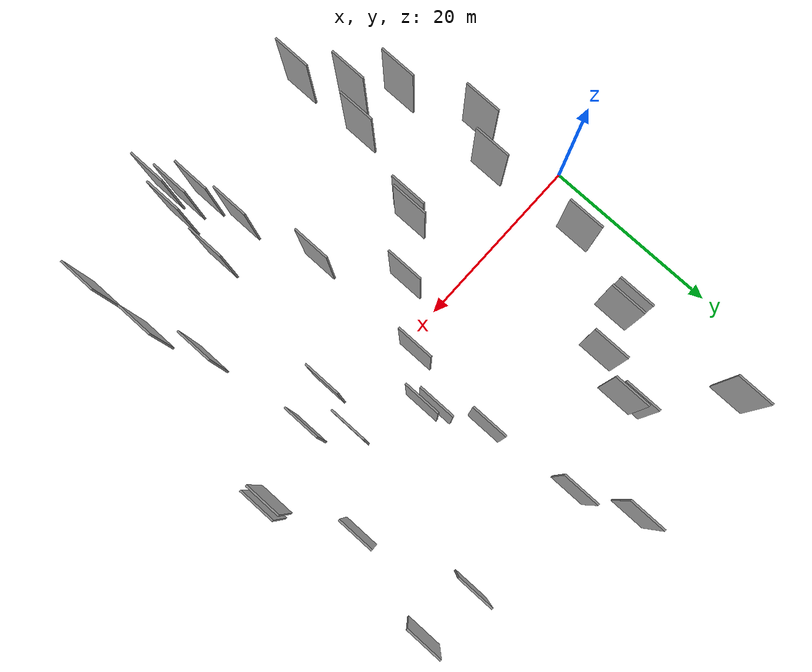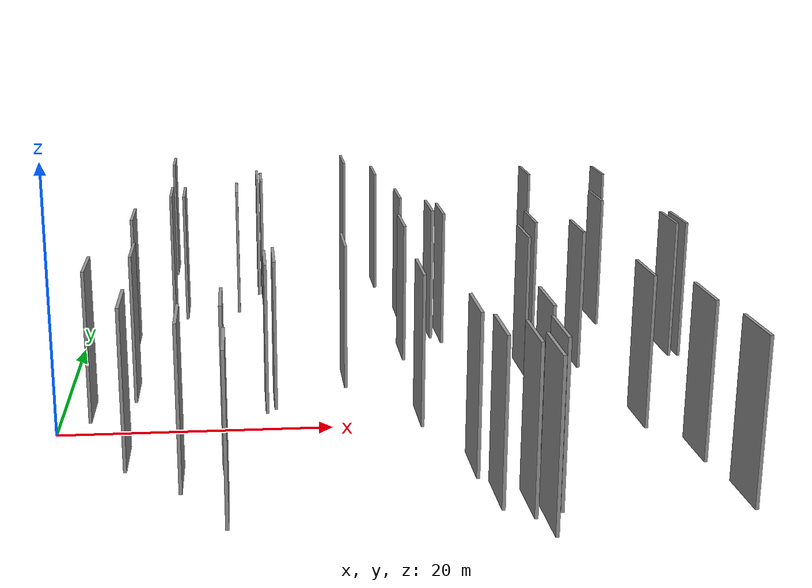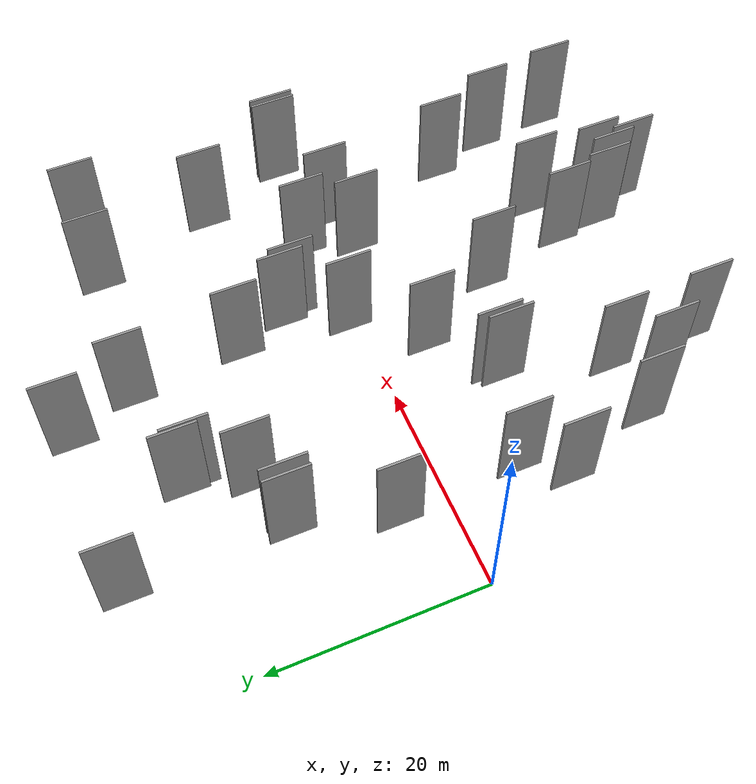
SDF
<sdf version="1.6">
 <world name="default">
  <scene>
   <sky><clouds><speed>12</speed></clouds></sky>
   <ambient>0.4 0.4 0.4 1</ambient>
   <background>0.7 0.7 0.7 1</background>
   <shadows>1</shadows>
  </scene>
  <gravity>0 0 -9.8066</gravity>
  <magnetic_field>6e-06 2.3e-05 -4.2e-05</magnetic_field>
  <physics default="0" name="default_physics" type="ode">
   <ode>
    <solver>
     <type>quick</type>
     <iters>10</iters>
     <sor>1.0</sor>
     <use_dynamic_moi_rescaling>0</use_dynamic_moi_rescaling>
    </solver>
    <constraints>
     <cfm>0</cfm>
     <erp>0.2</erp>
     <contact_max_correcting_vel>100</contact_max_correcting_vel>
     <contact_surface_layer>0.001</contact_surface_layer>
    </constraints>
   </ode>
   <max_step_size>0.004</max_step_size>
   <real_time_factor>1</real_time_factor>
   <real_time_update_rate>250</real_time_update_rate>
  </physics>
  <light name="sun" type="directional">
   <pose>0 0 10 0 0 0</pose>
   <diffuse>0.8 0.8 0.8 1</diffuse>
   <specular>0.2 0.2 0.2 1</specular>
   <attenuation>
    <range>1000</range>
    <constant>0.9</constant>
    <linear>0.01</linear>
    <quadratic>0.001</quadratic>
   </attenuation>
   <direction>-0.5 0.1 -0.9</direction>
  </light>
  <model name="grey_wall_1">
   <static>1</static>
   <pose>25.2401 2.0989 5.0 0.000000 0.000000 1.570796</pose>
   <link name="link">
    <pose>0 0 5.00 0 0 0</pose>
    <collision name="collision"><geometry><box><size>4.00 0.2 10.00</size></box></geometry></collision>
    <visual name="visual">
     <cast_shadows>0</cast_shadows>
     <geometry><box><size>4.00 0.2 10.00</size></box></geometry>
     <material>
      <script>
       <uri>model://grey_wall/materials/scripts</uri>
       <uri>model://grey_wall/materials/textures</uri>
       <name>vrc/grey_wall</name>
      </script>
     </material>
    </visual>
   </link>
  </model>
  <model name="grey_wall_2">
   <static>1</static>
   <pose>9.9231 -20.2590 5.0 0.000000 0.000000 1.570796</pose>
   <link name="link">
    <pose>0 0 5.00 0 0 0</pose>
    <collision name="collision"><geometry><box><size>4.00 0.2 10.00</size></box></geometry></collision>
    <visual name="visual">
     <cast_shadows>0</cast_shadows>
     <geometry><box><size>4.00 0.2 10.00</size></box></geometry>
     <material>
      <script>
       <uri>model://grey_wall/materials/scripts</uri>
       <uri>model://grey_wall/materials/textures</uri>
       <name>vrc/grey_wall</name>
      </script>
     </material>
    </visual>
   </link>
  </model>
  <model name="grey_wall_3">
   <static>1</static>
   <pose>28.6046 5.9898 5.0 0.000000 0.000000 1.570796</pose>
   <link name="link">
    <pose>0 0 5.00 0 0 0</pose>
    <collision name="collision"><geometry><box><size>4.00 0.2 10.00</size></box></geometry></collision>
    <visual name="visual">
     <cast_shadows>0</cast_shadows>
     <geometry><box><size>4.00 0.2 10.00</size></box></geometry>
     <material>
      <script>
       <uri>model://grey_wall/materials/scripts</uri>
       <uri>model://grey_wall/materials/textures</uri>
       <name>vrc/grey_wall</name>
      </script>
     </material>
    </visual>
   </link>
  </model>
  <model name="grey_wall_4">
   <static>1</static>
   <pose>30.7053 -24.4381 5.0 0.000000 0.000000 1.570796</pose>
   <link name="link">
    <pose>0 0 5.00 0 0 0</pose>
    <collision name="collision"><geometry><box><size>4.00 0.2 10.00</size></box></geometry></collision>
    <visual name="visual">
     <cast_shadows>0</cast_shadows>
     <geometry><box><size>4.00 0.2 10.00</size></box></geometry>
     <material>
      <script>
       <uri>model://grey_wall/materials/scripts</uri>
       <uri>model://grey_wall/materials/textures</uri>
       <name>vrc/grey_wall</name>
      </script>
     </material>
    </visual>
   </link>
  </model>
  <model name="grey_wall_5">
   <static>1</static>
   <pose>5.7284 5.8159 5.0 0.000000 0.000000 1.570796</pose>
   <link name="link">
    <pose>0 0 5.00 0 0 0</pose>
    <collision name="collision"><geometry><box><size>4.00 0.2 10.00</size></box></geometry></collision>
    <visual name="visual">
     <cast_shadows>0</cast_shadows>
     <geometry><box><size>4.00 0.2 10.00</size></box></geometry>
     <material>
      <script>
       <uri>model://grey_wall/materials/scripts</uri>
       <uri>model://grey_wall/materials/textures</uri>
       <name>vrc/grey_wall</name>
      </script>
     </material>
    </visual>
   </link>
  </model>
  <model name="grey_wall_6">
   <static>1</static>
   <pose>20.5550 -3.4269 5.0 0.000000 0.000000 1.570796</pose>
   <link name="link">
    <pose>0 0 5.00 0 0 0</pose>
    <collision name="collision"><geometry><box><size>4.00 0.2 10.00</size></box></geometry></collision>
    <visual name="visual">
     <cast_shadows>0</cast_shadows>
     <geometry><box><size>4.00 0.2 10.00</size></box></geometry>
     <material>
      <script>
       <uri>model://grey_wall/materials/scripts</uri>
       <uri>model://grey_wall/materials/textures</uri>
       <name>vrc/grey_wall</name>
      </script>
     </material>
    </visual>
   </link>
  </model>
  <model name="grey_wall_7">
   <static>1</static>
   <pose>6.4148 -5.1708 5.0 0.000000 0.000000 1.570796</pose>
   <link name="link">
    <pose>0 0 5.00 0 0 0</pose>
    <collision name="collision"><geometry><box><size>4.00 0.2 10.00</size></box></geometry></collision>
    <visual name="visual">
     <cast_shadows>0</cast_shadows>
     <geometry><box><size>4.00 0.2 10.00</size></box></geometry>
     <material>
      <script>
       <uri>model://grey_wall/materials/scripts</uri>
       <uri>model://grey_wall/materials/textures</uri>
       <name>vrc/grey_wall</name>
      </script>
     </material>
    </visual>
   </link>
  </model>
  <model name="grey_wall_8">
   <static>1</static>
   <pose>7.8547 27.8381 5.0 0.000000 0.000000 1.570796</pose>
   <link name="link">
    <pose>0 0 5.00 0 0 0</pose>
    <collision name="collision"><geometry><box><size>4.00 0.2 10.00</size></box></geometry></collision>
    <visual name="visual">
     <cast_shadows>0</cast_shadows>
     <geometry><box><size>4.00 0.2 10.00</size></box></geometry>
     <material>
      <script>
       <uri>model://grey_wall/materials/scripts</uri>
       <uri>model://grey_wall/materials/textures</uri>
       <name>vrc/grey_wall</name>
      </script>
     </material>
    </visual>
   </link>
  </model>
  <model name="grey_wall_9">
   <static>1</static>
   <pose>33.3533 -1.9351 5.0 0.000000 0.000000 1.570796</pose>
   <link name="link">
    <pose>0 0 5.00 0 0 0</pose>
    <collision name="collision"><geometry><box><size>4.00 0.2 10.00</size></box></geometry></collision>
    <visual name="visual">
     <cast_shadows>0</cast_shadows>
     <geometry><box><size>4.00 0.2 10.00</size></box></geometry>
     <material>
      <script>
       <uri>model://grey_wall/materials/scripts</uri>
       <uri>model://grey_wall/materials/textures</uri>
       <name>vrc/grey_wall</name>
      </script>
     </material>
    </visual>
   </link>
  </model>
  <model name="grey_wall_10">
   <static>1</static>
   <pose>8.1811 14.0430 5.0 0.000000 0.000000 1.570796</pose>
   <link name="link">
    <pose>0 0 5.00 0 0 0</pose>
    <collision name="collision"><geometry><box><size>4.00 0.2 10.00</size></box></geometry></collision>
    <visual name="visual">
     <cast_shadows>0</cast_shadows>
     <geometry><box><size>4.00 0.2 10.00</size></box></geometry>
     <material>
      <script>
       <uri>model://grey_wall/materials/scripts</uri>
       <uri>model://grey_wall/materials/textures</uri>
       <name>vrc/grey_wall</name>
      </script>
     </material>
    </visual>
   </link>
  </model>
  <model name="grey_wall_11">
   <static>1</static>
   <pose>44.5059 20.5372 5.0 0.000000 0.000000 1.570796</pose>
   <link name="link">
    <pose>0 0 5.00 0 0 0</pose>
    <collision name="collision"><geometry><box><size>4.00 0.2 10.00</size></box></geometry></collision>
    <visual name="visual">
     <cast_shadows>0</cast_shadows>
     <geometry><box><size>4.00 0.2 10.00</size></box></geometry>
     <material>
      <script>
       <uri>model://grey_wall/materials/scripts</uri>
       <uri>model://grey_wall/materials/textures</uri>
       <name>vrc/grey_wall</name>
      </script>
     </material>
    </visual>
   </link>
  </model>
  <model name="grey_wall_12">
   <static>1</static>
   <pose>40.8298 -18.2750 5.0 0.000000 0.000000 1.570796</pose>
   <link name="link">
    <pose>0 0 5.00 0 0 0</pose>
    <collision name="collision"><geometry><box><size>4.00 0.2 10.00</size></box></geometry></collision>
    <visual name="visual">
     <cast_shadows>0</cast_shadows>
     <geometry><box><size>4.00 0.2 10.00</size></box></geometry>
     <material>
      <script>
       <uri>model://grey_wall/materials/scripts</uri>
       <uri>model://grey_wall/materials/textures</uri>
       <name>vrc/grey_wall</name>
      </script>
     </material>
    </visual>
   </link>
  </model>
  <model name="grey_wall_13">
   <static>1</static>
   <pose>15.3725 19.6730 5.0 0.000000 0.000000 1.570796</pose>
   <link name="link">
    <pose>0 0 5.00 0 0 0</pose>
    <collision name="collision"><geometry><box><size>4.00 0.2 10.00</size></box></geometry></collision>
    <visual name="visual">
     <cast_shadows>0</cast_shadows>
     <geometry><box><size>4.00 0.2 10.00</size></box></geometry>
     <material>
      <script>
       <uri>model://grey_wall/materials/scripts</uri>
       <uri>model://grey_wall/materials/textures</uri>
       <name>vrc/grey_wall</name>
      </script>
     </material>
    </visual>
   </link>
  </model>
  <model name="grey_wall_14">
   <static>1</static>
   <pose>22.8901 27.8408 5.0 0.000000 0.000000 1.570796</pose>
   <link name="link">
    <pose>0 0 5.00 0 0 0</pose>
    <collision name="collision"><geometry><box><size>4.00 0.2 10.00</size></box></geometry></collision>
    <visual name="visual">
     <cast_shadows>0</cast_shadows>
     <geometry><box><size>4.00 0.2 10.00</size></box></geometry>
     <material>
      <script>
       <uri>model://grey_wall/materials/scripts</uri>
       <uri>model://grey_wall/materials/textures</uri>
       <name>vrc/grey_wall</name>
      </script>
     </material>
    </visual>
   </link>
  </model>
  <model name="grey_wall_15">
   <static>1</static>
   <pose>15.0870 -7.9420 5.0 0.000000 0.000000 1.570796</pose>
   <link name="link">
    <pose>0 0 5.00 0 0 0</pose>
    <collision name="collision"><geometry><box><size>4.00 0.2 10.00</size></box></geometry></collision>
    <visual name="visual">
     <cast_shadows>0</cast_shadows>
     <geometry><box><size>4.00 0.2 10.00</size></box></geometry>
     <material>
      <script>
       <uri>model://grey_wall/materials/scripts</uri>
       <uri>model://grey_wall/materials/textures</uri>
       <name>vrc/grey_wall</name>
      </script>
     </material>
    </visual>
   </link>
  </model>
  <model name="grey_wall_16">
   <static>1</static>
   <pose>34.8203 2.6107 5.0 0.000000 0.000000 1.570796</pose>
   <link name="link">
    <pose>0 0 5.00 0 0 0</pose>
    <collision name="collision"><geometry><box><size>4.00 0.2 10.00</size></box></geometry></collision>
    <visual name="visual">
     <cast_shadows>0</cast_shadows>
     <geometry><box><size>4.00 0.2 10.00</size></box></geometry>
     <material>
      <script>
       <uri>model://grey_wall/materials/scripts</uri>
       <uri>model://grey_wall/materials/textures</uri>
       <name>vrc/grey_wall</name>
      </script>
     </material>
    </visual>
   </link>
  </model>
  <model name="grey_wall_17">
   <static>1</static>
   <pose>27.5722 -23.8643 5.0 0.000000 0.000000 1.570796</pose>
   <link name="link">
    <pose>0 0 5.00 0 0 0</pose>
    <collision name="collision"><geometry><box><size>4.00 0.2 10.00</size></box></geometry></collision>
    <visual name="visual">
     <cast_shadows>0</cast_shadows>
     <geometry><box><size>4.00 0.2 10.00</size></box></geometry>
     <material>
      <script>
       <uri>model://grey_wall/materials/scripts</uri>
       <uri>model://grey_wall/materials/textures</uri>
       <name>vrc/grey_wall</name>
      </script>
     </material>
    </visual>
   </link>
  </model>
  <model name="grey_wall_18">
   <static>1</static>
   <pose>6.5793 -16.9391 5.0 0.000000 0.000000 1.570796</pose>
   <link name="link">
    <pose>0 0 5.00 0 0 0</pose>
    <collision name="collision"><geometry><box><size>4.00 0.2 10.00</size></box></geometry></collision>
    <visual name="visual">
     <cast_shadows>0</cast_shadows>
     <geometry><box><size>4.00 0.2 10.00</size></box></geometry>
     <material>
      <script>
       <uri>model://grey_wall/materials/scripts</uri>
       <uri>model://grey_wall/materials/textures</uri>
       <name>vrc/grey_wall</name>
      </script>
     </material>
    </visual>
   </link>
  </model>
  <model name="grey_wall_19">
   <static>1</static>
   <pose>41.5627 9.7166 5.0 0.000000 0.000000 1.570796</pose>
   <link name="link">
    <pose>0 0 5.00 0 0 0</pose>
    <collision name="collision"><geometry><box><size>4.00 0.2 10.00</size></box></geometry></collision>
    <visual name="visual">
     <cast_shadows>0</cast_shadows>
     <geometry><box><size>4.00 0.2 10.00</size></box></geometry>
     <material>
      <script>
       <uri>model://grey_wall/materials/scripts</uri>
       <uri>model://grey_wall/materials/textures</uri>
       <name>vrc/grey_wall</name>
      </script>
     </material>
    </visual>
   </link>
  </model>
  <model name="grey_wall_20">
   <static>1</static>
   <pose>29.1157 -25.1075 5.0 0.000000 0.000000 1.570796</pose>
   <link name="link">
    <pose>0 0 5.00 0 0 0</pose>
    <collision name="collision"><geometry><box><size>4.00 0.2 10.00</size></box></geometry></collision>
    <visual name="visual">
     <cast_shadows>0</cast_shadows>
     <geometry><box><size>4.00 0.2 10.00</size></box></geometry>
     <material>
      <script>
       <uri>model://grey_wall/materials/scripts</uri>
       <uri>model://grey_wall/materials/textures</uri>
       <name>vrc/grey_wall</name>
      </script>
     </material>
    </visual>
   </link>
  </model>
  <model name="grey_wall_21">
   <static>1</static>
   <pose>24.8374 -11.1464 5.0 0.000000 0.000000 1.570796</pose>
   <link name="link">
    <pose>0 0 5.00 0 0 0</pose>
    <collision name="collision"><geometry><box><size>4.00 0.2 10.00</size></box></geometry></collision>
    <visual name="visual">
     <cast_shadows>0</cast_shadows>
     <geometry><box><size>4.00 0.2 10.00</size></box></geometry>
     <material>
      <script>
       <uri>model://grey_wall/materials/scripts</uri>
       <uri>model://grey_wall/materials/textures</uri>
       <name>vrc/grey_wall</name>
      </script>
     </material>
    </visual>
   </link>
  </model>
  <model name="grey_wall_22">
   <static>1</static>
   <pose>13.3433 15.4557 5.0 0.000000 0.000000 1.570796</pose>
   <link name="link">
    <pose>0 0 5.00 0 0 0</pose>
    <collision name="collision"><geometry><box><size>4.00 0.2 10.00</size></box></geometry></collision>
    <visual name="visual">
     <cast_shadows>0</cast_shadows>
     <geometry><box><size>4.00 0.2 10.00</size></box></geometry>
     <material>
      <script>
       <uri>model://grey_wall/materials/scripts</uri>
       <uri>model://grey_wall/materials/textures</uri>
       <name>vrc/grey_wall</name>
      </script>
     </material>
    </visual>
   </link>
  </model>
  <model name="grey_wall_23">
   <static>1</static>
   <pose>41.3781 -25.0281 5.0 0.000000 0.000000 1.570796</pose>
   <link name="link">
    <pose>0 0 5.00 0 0 0</pose>
    <collision name="collision"><geometry><box><size>4.00 0.2 10.00</size></box></geometry></collision>
    <visual name="visual">
     <cast_shadows>0</cast_shadows>
     <geometry><box><size>4.00 0.2 10.00</size></box></geometry>
     <material>
      <script>
       <uri>model://grey_wall/materials/scripts</uri>
       <uri>model://grey_wall/materials/textures</uri>
       <name>vrc/grey_wall</name>
      </script>
     </material>
    </visual>
   </link>
  </model>
  <model name="grey_wall_24">
   <static>1</static>
   <pose>26.9352 -19.5245 5.0 0.000000 0.000000 1.570796</pose>
   <link name="link">
    <pose>0 0 5.00 0 0 0</pose>
    <collision name="collision"><geometry><box><size>4.00 0.2 10.00</size></box></geometry></collision>
    <visual name="visual">
     <cast_shadows>0</cast_shadows>
     <geometry><box><size>4.00 0.2 10.00</size></box></geometry>
     <material>
      <script>
       <uri>model://grey_wall/materials/scripts</uri>
       <uri>model://grey_wall/materials/textures</uri>
       <name>vrc/grey_wall</name>
      </script>
     </material>
    </visual>
   </link>
  </model>
  <model name="grey_wall_25">
   <static>1</static>
   <pose>45.5415 1.4678 5.0 0.000000 0.000000 1.570796</pose>
   <link name="link">
    <pose>0 0 5.00 0 0 0</pose>
    <collision name="collision"><geometry><box><size>4.00 0.2 10.00</size></box></geometry></collision>
    <visual name="visual">
     <cast_shadows>0</cast_shadows>
     <geometry><box><size>4.00 0.2 10.00</size></box></geometry>
     <material>
      <script>
       <uri>model://grey_wall/materials/scripts</uri>
       <uri>model://grey_wall/materials/textures</uri>
       <name>vrc/grey_wall</name>
      </script>
     </material>
    </visual>
   </link>
  </model>
  <model name="grey_wall_26">
   <static>1</static>
   <pose>26.0697 11.8986 5.0 0.000000 0.000000 1.570796</pose>
   <link name="link">
    <pose>0 0 5.00 0 0 0</pose>
    <collision name="collision"><geometry><box><size>4.00 0.2 10.00</size></box></geometry></collision>
    <visual name="visual">
     <cast_shadows>0</cast_shadows>
     <geometry><box><size>4.00 0.2 10.00</size></box></geometry>
     <material>
      <script>
       <uri>model://grey_wall/materials/scripts</uri>
       <uri>model://grey_wall/materials/textures</uri>
       <name>vrc/grey_wall</name>
      </script>
     </material>
    </visual>
   </link>
  </model>
  <model name="grey_wall_27">
   <static>1</static>
   <pose>38.2055 20.9497 5.0 0.000000 0.000000 1.570796</pose>
   <link name="link">
    <pose>0 0 5.00 0 0 0</pose>
    <collision name="collision"><geometry><box><size>4.00 0.2 10.00</size></box></geometry></collision>
    <visual name="visual">
     <cast_shadows>0</cast_shadows>
     <geometry><box><size>4.00 0.2 10.00</size></box></geometry>
     <material>
      <script>
       <uri>model://grey_wall/materials/scripts</uri>
       <uri>model://grey_wall/materials/textures</uri>
       <name>vrc/grey_wall</name>
      </script>
     </material>
    </visual>
   </link>
  </model>
  <model name="grey_wall_28">
   <static>1</static>
   <pose>29.7336 -27.4060 5.0 0.000000 0.000000 1.570796</pose>
   <link name="link">
    <pose>0 0 5.00 0 0 0</pose>
    <collision name="collision"><geometry><box><size>4.00 0.2 10.00</size></box></geometry></collision>
    <visual name="visual">
     <cast_shadows>0</cast_shadows>
     <geometry><box><size>4.00 0.2 10.00</size></box></geometry>
     <material>
      <script>
       <uri>model://grey_wall/materials/scripts</uri>
       <uri>model://grey_wall/materials/textures</uri>
       <name>vrc/grey_wall</name>
      </script>
     </material>
    </visual>
   </link>
  </model>
  <model name="grey_wall_29">
   <static>1</static>
   <pose>12.5577 -25.0535 5.0 0.000000 0.000000 1.570796</pose>
   <link name="link">
    <pose>0 0 5.00 0 0 0</pose>
    <collision name="collision"><geometry><box><size>4.00 0.2 10.00</size></box></geometry></collision>
    <visual name="visual">
     <cast_shadows>0</cast_shadows>
     <geometry><box><size>4.00 0.2 10.00</size></box></geometry>
     <material>
      <script>
       <uri>model://grey_wall/materials/scripts</uri>
       <uri>model://grey_wall/materials/textures</uri>
       <name>vrc/grey_wall</name>
      </script>
     </material>
    </visual>
   </link>
  </model>
  <model name="grey_wall_30">
   <static>1</static>
   <pose>25.1216 21.9988 5.0 0.000000 0.000000 1.570796</pose>
   <link name="link">
    <pose>0 0 5.00 0 0 0</pose>
    <collision name="collision"><geometry><box><size>4.00 0.2 10.00</size></box></geometry></collision>
    <visual name="visual">
     <cast_shadows>0</cast_shadows>
     <geometry><box><size>4.00 0.2 10.00</size></box></geometry>
     <material>
      <script>
       <uri>model://grey_wall/materials/scripts</uri>
       <uri>model://grey_wall/materials/textures</uri>
       <name>vrc/grey_wall</name>
      </script>
     </material>
    </visual>
   </link>
  </model>
  <model name="grey_wall_31">
   <static>1</static>
   <pose>27.9239 7.1707 5.0 0.000000 0.000000 1.570796</pose>
   <link name="link">
    <pose>0 0 5.00 0 0 0</pose>
    <collision name="collision"><geometry><box><size>4.00 0.2 10.00</size></box></geometry></collision>
    <visual name="visual">
     <cast_shadows>0</cast_shadows>
     <geometry><box><size>4.00 0.2 10.00</size></box></geometry>
     <material>
      <script>
       <uri>model://grey_wall/materials/scripts</uri>
       <uri>model://grey_wall/materials/textures</uri>
       <name>vrc/grey_wall</name>
      </script>
     </material>
    </visual>
   </link>
  </model>
  <model name="grey_wall_32">
   <static>1</static>
   <pose>9.2046 13.9225 5.0 0.000000 0.000000 1.570796</pose>
   <link name="link">
    <pose>0 0 5.00 0 0 0</pose>
    <collision name="collision"><geometry><box><size>4.00 0.2 10.00</size></box></geometry></collision>
    <visual name="visual">
     <cast_shadows>0</cast_shadows>
     <geometry><box><size>4.00 0.2 10.00</size></box></geometry>
     <material>
      <script>
       <uri>model://grey_wall/materials/scripts</uri>
       <uri>model://grey_wall/materials/textures</uri>
       <name>vrc/grey_wall</name>
      </script>
     </material>
    </visual>
   </link>
  </model>
  <model name="grey_wall_33">
   <static>1</static>
   <pose>15.0684 20.6517 5.0 0.000000 0.000000 1.570796</pose>
   <link name="link">
    <pose>0 0 5.00 0 0 0</pose>
    <collision name="collision"><geometry><box><size>4.00 0.2 10.00</size></box></geometry></collision>
    <visual name="visual">
     <cast_shadows>0</cast_shadows>
     <geometry><box><size>4.00 0.2 10.00</size></box></geometry>
     <material>
      <script>
       <uri>model://grey_wall/materials/scripts</uri>
       <uri>model://grey_wall/materials/textures</uri>
       <name>vrc/grey_wall</name>
      </script>
     </material>
    </visual>
   </link>
  </model>
  <model name="grey_wall_34">
   <static>1</static>
   <pose>37.4914 -0.6509 5.0 0.000000 0.000000 1.570796</pose>
   <link name="link">
    <pose>0 0 5.00 0 0 0</pose>
    <collision name="collision"><geometry><box><size>4.00 0.2 10.00</size></box></geometry></collision>
    <visual name="visual">
     <cast_shadows>0</cast_shadows>
     <geometry><box><size>4.00 0.2 10.00</size></box></geometry>
     <material>
      <script>
       <uri>model://grey_wall/materials/scripts</uri>
       <uri>model://grey_wall/materials/textures</uri>
       <name>vrc/grey_wall</name>
      </script>
     </material>
    </visual>
   </link>
  </model>
  <model name="grey_wall_35">
   <static>1</static>
   <pose>44.8635 1.5210 5.0 0.000000 0.000000 1.570796</pose>
   <link name="link">
    <pose>0 0 5.00 0 0 0</pose>
    <collision name="collision"><geometry><box><size>4.00 0.2 10.00</size></box></geometry></collision>
    <visual name="visual">
     <cast_shadows>0</cast_shadows>
     <geometry><box><size>4.00 0.2 10.00</size></box></geometry>
     <material>
      <script>
       <uri>model://grey_wall/materials/scripts</uri>
       <uri>model://grey_wall/materials/textures</uri>
       <name>vrc/grey_wall</name>
      </script>
     </material>
    </visual>
   </link>
  </model>
  <model name="grey_wall_36">
   <static>1</static>
   <pose>12.3550 -16.9913 5.0 0.000000 0.000000 1.570796</pose>
   <link name="link">
    <pose>0 0 5.00 0 0 0</pose>
    <collision name="collision"><geometry><box><size>4.00 0.2 10.00</size></box></geometry></collision>
    <visual name="visual">
     <cast_shadows>0</cast_shadows>
     <geometry><box><size>4.00 0.2 10.00</size></box></geometry>
     <material>
      <script>
       <uri>model://grey_wall/materials/scripts</uri>
       <uri>model://grey_wall/materials/textures</uri>
       <name>vrc/grey_wall</name>
      </script>
     </material>
    </visual>
   </link>
  </model>
  <model name="grey_wall_37">
   <static>1</static>
   <pose>3.7608 -8.7176 5.0 0.000000 0.000000 1.570796</pose>
   <link name="link">
    <pose>0 0 5.00 0 0 0</pose>
    <collision name="collision"><geometry><box><size>4.00 0.2 10.00</size></box></geometry></collision>
    <visual name="visual">
     <cast_shadows>0</cast_shadows>
     <geometry><box><size>4.00 0.2 10.00</size></box></geometry>
     <material>
      <script>
       <uri>model://grey_wall/materials/scripts</uri>
       <uri>model://grey_wall/materials/textures</uri>
       <name>vrc/grey_wall</name>
      </script>
     </material>
    </visual>
   </link>
  </model>
  <model name="grey_wall_38">
   <static>1</static>
   <pose>38.9179 -12.6188 5.0 0.000000 0.000000 1.570796</pose>
   <link name="link">
    <pose>0 0 5.00 0 0 0</pose>
    <collision name="collision"><geometry><box><size>4.00 0.2 10.00</size></box></geometry></collision>
    <visual name="visual">
     <cast_shadows>0</cast_shadows>
     <geometry><box><size>4.00 0.2 10.00</size></box></geometry>
     <material>
      <script>
       <uri>model://grey_wall/materials/scripts</uri>
       <uri>model://grey_wall/materials/textures</uri>
       <name>vrc/grey_wall</name>
      </script>
     </material>
    </visual>
   </link>
  </model>
  <model name="grey_wall_39">
   <static>1</static>
   <pose>31.2753 -18.4929 5.0 0.000000 0.000000 1.570796</pose>
   <link name="link">
    <pose>0 0 5.00 0 0 0</pose>
    <collision name="collision"><geometry><box><size>4.00 0.2 10.00</size></box></geometry></collision>
    <visual name="visual">
     <cast_shadows>0</cast_shadows>
     <geometry><box><size>4.00 0.2 10.00</size></box></geometry>
     <material>
      <script>
       <uri>model://grey_wall/materials/scripts</uri>
       <uri>model://grey_wall/materials/textures</uri>
       <name>vrc/grey_wall</name>
      </script>
     </material>
    </visual>
   </link>
  </model>
  <model name="grey_wall_40">
   <static>1</static>
   <pose>15.6691 -7.2458 5.0 0.000000 0.000000 1.570796</pose>
   <link name="link">
    <pose>0 0 5.00 0 0 0</pose>
    <collision name="collision"><geometry><box><size>4.00 0.2 10.00</size></box></geometry></collision>
    <visual name="visual">
     <cast_shadows>0</cast_shadows>
     <geometry><box><size>4.00 0.2 10.00</size></box></geometry>
     <material>
      <script>
       <uri>model://grey_wall/materials/scripts</uri>
       <uri>model://grey_wall/materials/textures</uri>
       <name>vrc/grey_wall</name>
      </script>
     </material>
    </visual>
   </link>
  </model>
 </world>
</sdf>
